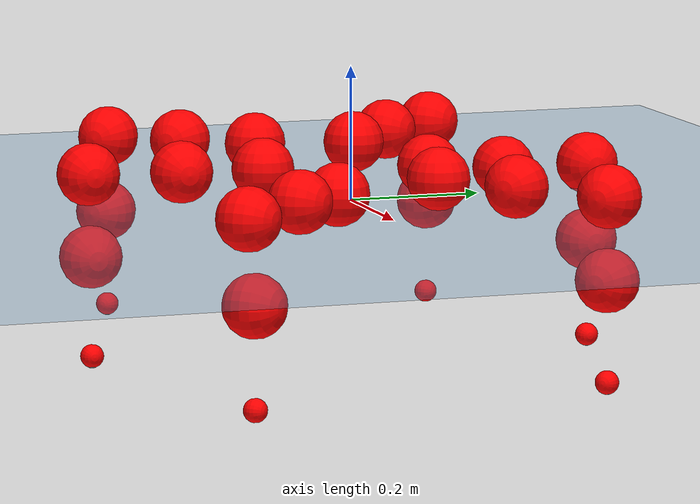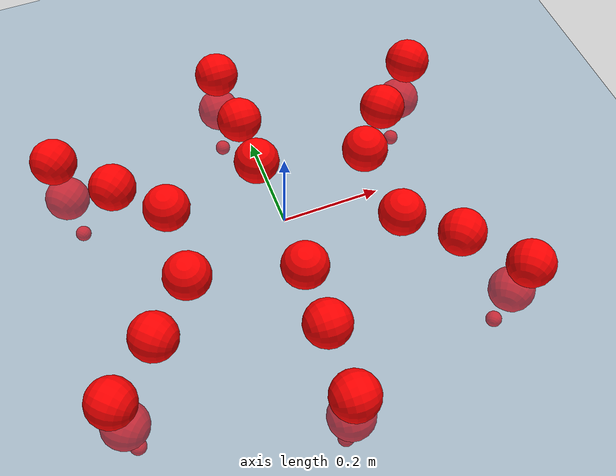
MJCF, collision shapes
<mujoco model="Golem">
  <compiler angle="radian" assetdir="assets" balanceinertia="true" inertiafromgeom="false"/>

  <option timestep="0.005" density="1.2" viscosity="2e-05"/>

  <size nkey="1"/>

  <visual>
    <quality shadowsize="8192"/>
    <map shadowclip="0.5"/>
  </visual>

  <default>
    <default class="/">
      <joint armature="0.01" damping="0.01" frictionloss="0.01"/>
      <geom contype="0" conaffinity="0" group="1" solref="-1000 -80"/>
      <site size="0.01 0.005 0.005" group="5"/>
      <general forcelimited="true" biastype="affine" gainprm="25" biasprm="0 -25 -0.5"/>
      <default class="visual">
        <geom type="mesh" group="2"/>
      </default>
      <default class="collision">
        <geom group="3"/>
      </default>
      <default class="foot">
        <geom size="0.01 0 0" condim="6" group="4" priority="1" solimp="0.015 1 0.01"/>
      </default>
      <default class="reward_collision_sphere">
        <geom group="5" rgba="1 0 0 1"/>
      </default>
    </default>
  </default>

  <asset>
    <texture type="skybox" colorspace="auto" name="//unnamed_texture_0" builtin="gradient" rgb1="0.95 0.95 0.95" rgb2="0.95 0.95 0.95" width="100" height="600"/>
    <texture type="2d" colorspace="auto" name="texplane" builtin="checker" rgb1="0.345 0.575 0.748" rgb2="0.345 0.575 0.748" markrgb="1 1 1" width="512" height="512"/>
    <material name="MatPlane" class="/" texture="texplane" texuniform="true" texrepeat="2 2" specular="0.9"/>
    <mesh name="body" class="/" file="body.stl" scale="0.001 0.001 0.001"/>
    <mesh name="coxa" class="/" file="coxa.stl" scale="0.001 0.001 0.001"/>
    <mesh name="femur" class="/" file="femur.stl" scale="0.001 0.001 0.001"/>
    <mesh name="tibia" class="/" file="tibia.stl" scale="0.001 0.001 0.001"/>
    <mesh name="tarsus" class="/" file="tarsus.stl" scale="0.001 0.001 0.001"/>
  </asset>

  <worldbody>
    <geom name="floor" class="/" size="100 100 0.125" type="plane" group="0" material="MatPlane"/>
    <light name="toplight_shadow" class="/" pos="0 0 5" dir="0.0990148 0.0990148 -0.990148" type="directional" ambient="0.04 0.04 0.04" diffuse="0.55 0.55 0.55" specular="0.12 0.12 0.12"/>
    <light name="toplight_fill" class="/" pos="0 0 5" dir="0.0990148 0.0990148 -0.990148" type="directional" castshadow="false" ambient="0.04 0.04 0.04" diffuse="0.3 0.3 0.3" specular="0.08 0.08 0.08"/>
    <body name="trunk" pos="-0.00754275 -0.00266074 -0.00204591" quat="1 -7.05986e-05 1.81909e-05 -0.000139772">
      <inertial pos="0.000947037 0.00152681 -0.00473125" quat="0.999966 0.00492569 0.00326401 0.00566777" mass="6.1063" diaginertia="0.0552422 0.0383001 0.00376622"/>
      <joint name="//unnamed_joint_0" type="free"/>
      <geom name="//unnamed_geom_1" class="/" pos="0 0 0.052568" quat="1 0 0 0" type="mesh" rgba="0.9 0.9 0.9 1" mesh="body"/>
      <site name="imu" class="/" pos="0.145601 -0.0311646 0.0852331" size="0.0116343"/>
      <camera name="track" class="/" pos="0 -2.58422 0" quat="0.707107 0.707107 0 0" mode="trackcom"/>
      <camera name="ego_camera" class="/" pos="0.178984 0 0.0821375" quat="-0.5 -0.5 0.5 0.5"/>
      <body name="coxa_RR" pos="-0.242782 -0.107803 0.0601779" quat="0.382748 0.000224239 -0.000220797 -0.923853">
        <inertial pos="-0.000610345 0.00823187 0.00109018" quat="0.9998 0.00334843 -0.00863545 0.0177184" mass="0.354193" diaginertia="0.0528659 0.0385921 0.0040333"/>
        <joint name="coxa_joint_RR" class="/" pos="0 0 0" axis="0.00496946 0.00207577 -0.999985" stiffness="0.0346108" range="-3.12858 3.1367" armature="0.0146374" damping="0.00754293" frictionloss="0.0117551"/>
        <geom name="//unnamed_geom_2" class="/" type="mesh" rgba="0.2 0.2 0.2 1" mesh="coxa"/>
        <geom name="//unnamed_geom_3" class="reward_collision_sphere" size="0.0465372" pos="-0.041304 0 0"/>
        <body name="femur_RR" pos="0.0886178 0.00201905 -0.00293168" quat="0.499994 -0.500005 0.500004 0.499997">
          <inertial pos="0.00142349 0.000323192 -0.00132669" quat="0.999997 -0.000814033 -0.00099316 -0.00212063" mass="0.315962" diaginertia="0.0497211 0.0365767 0.00333834"/>
          <joint name="femur_joint_RR" class="/" pos="0 0 0" axis="0.000690244 0.00497518 -0.999987" stiffness="0.032959" range="-3.01717 3.21525" armature="0.0110531" damping="0" frictionloss="0.00841244"/>
          <geom name="//unnamed_geom_4" class="/" type="mesh" rgba="0.9 0.9 0.9 1" mesh="femur"/>
          <geom name="//unnamed_geom_5" class="reward_collision_sphere" size="0.0465372"/>
          <body name="tibia_RR" pos="0.0047877 -0.13245 -0.00835341" quat="0.00273565 0.999992 0.001107 -0.00273155">
            <inertial pos="0.00616741 -0.00159196 -0.00179049" quat="0.99997 0.00367325 -0.000144643 0.00680736" mass="0.305998" diaginertia="0.0497955 0.0368563 0.00401433"/>
            <joint name="tibia_joint_RR" class="/" pos="0 0 0" axis="0.0221481 0.0202443 0.99955" range="-3.16011 3.08041" armature="0.0105782" damping="0.0123302" frictionloss="0.0115508"/>
            <geom name="//unnamed_geom_6" class="/" type="mesh" rgba="0.2 0.2 0.2 1" mesh="tibia"/>
            <geom name="//unnamed_geom_7" class="reward_collision_sphere" size="0.0465372"/>
            <body name="tarsus_RR" pos="0.116173 0.00231943 -0.00575792" quat="1 -5.37224e-05 0.000129917 -0.000183525">
              <inertial pos="0.0767953 4.82066e-06 -0.00122571" quat="0.49887 0.500409 0.496698 0.503994" mass="0.311426" diaginertia="0.0507564 0.0359821 0.00369067"/>
              <joint name="tarsus_joint_RR" class="/" pos="0 0 0" axis="0.00397291 0.00470634 0.999981" range="-3.01852 3.07378" armature="0.0111405" damping="0.0399378" frictionloss="0.0124703"/>
              <geom name="//unnamed_geom_8" class="/" type="mesh" rgba="0.9 0.9 0.9 1" mesh="tarsus"/>
              <geom name="foot_1" class="foot" size="0.0117111" pos="0.154202 0 0" quat="0 -0.707107 0 0.707107"/>
              <geom name="//unnamed_geom_10" class="reward_collision_sphere" size="0.0465372"/>
              <geom name="//unnamed_geom_11" class="reward_collision_sphere" size="0.0174514" pos="0.148006 0 0"/>
              <site name="foot_1" class="foot" pos="0.154202 0 0" quat="0 -0.707107 0 0.707107" size="0.0116343"/>
            </body>
          </body>
        </body>
      </body>
      <body name="coxa_RM" pos="-0.00171194 -0.172459 0.0534407" quat="0.707999 -0.000867109 0.000126292 -0.706213">
        <inertial pos="-0.00421066 -0.000456093 0.00127214" quat="0.999984 -0.000137667 -0.00432408 0.00377246" mass="0.321112" diaginertia="0.0510588 0.0398871 0.00359992"/>
        <joint name="coxa_joint_RM" class="/" pos="0 0 0" axis="0.0051509 0.00293705 -0.999982" range="-3.13441 3.16837" armature="0.0113015" damping="0.0305759" frictionloss="0.0170301"/>
        <geom name="//unnamed_geom_12" class="/" type="mesh" rgba="0.2 0.2 0.2 1" mesh="coxa"/>
        <geom name="//unnamed_geom_13" class="reward_collision_sphere" size="0.0465372" pos="-0.041304 0 0"/>
        <body name="femur_RM" pos="0.0820906 -0.00563791 0.000484569" quat="0.500617 -0.498044 0.498707 0.502619">
          <inertial pos="0.00124209 0.000593845 -0.00010218" quat="1 2.28463e-05 4.2408e-05 -2.50244e-05" mass="0.275946" diaginertia="0.044552 0.0344239 0.00337675"/>
          <joint name="femur_joint_RM" class="/" pos="0 0 0" axis="0.00744629 0.011378 -0.999908" range="-3.09661 3.14908" armature="0.0124168" damping="0" frictionloss="0.0116918"/>
          <geom name="//unnamed_geom_14" class="/" type="mesh" rgba="0.9 0.9 0.9 1" mesh="femur"/>
          <geom name="//unnamed_geom_15" class="reward_collision_sphere" size="0.0465372"/>
          <body name="tibia_RM" pos="-0.00239552 -0.139658 -0.00806099" quat="0.000228868 1 0.000544801 0.00058303">
            <inertial pos="-0.0036045 0.00796723 0.00184331" quat="0.999486 0.0203491 -0.00129947 0.0247507" mass="0.339775" diaginertia="0.0488858 0.0323115 0.003657"/>
            <joint name="tibia_joint_RM" class="/" pos="0 0 0" axis="0.00205897 -0.00292907 0.999994" range="-3.01077 2.95493" armature="0.0117039" damping="0.0179792" frictionloss="0.0123872"/>
            <geom name="//unnamed_geom_16" class="/" type="mesh" rgba="0.2 0.2 0.2 1" mesh="tibia"/>
            <geom name="//unnamed_geom_17" class="reward_collision_sphere" size="0.0465372"/>
            <body name="tarsus_RM" pos="0.121968 -0.00120163 -0.00328604" quat="1 -1.25821e-05 -5.65164e-05 0.000112066">
              <inertial pos="0.0845171 0.00353346 -0.0045015" quat="0.488762 0.497365 0.480223 0.532095" mass="0.286503" diaginertia="0.0537187 0.037532 0.00399917"/>
              <joint name="tarsus_joint_RM" class="/" pos="0 0 0" axis="-0.000750321 -0.0064749 0.999979" stiffness="0.0167369" range="-3.20216 3.12181" armature="0.011238" damping="0" frictionloss="0.0112427"/>
              <geom name="//unnamed_geom_18" class="/" type="mesh" rgba="0.9 0.9 0.9 1" mesh="tarsus"/>
              <geom name="foot_2" class="foot" size="0.0120336" pos="0.154202 0 0" quat="0 -0.707107 0 0.707107"/>
              <geom name="//unnamed_geom_20" class="reward_collision_sphere" size="0.0465372"/>
              <geom name="//unnamed_geom_21" class="reward_collision_sphere" size="0.0174514" pos="0.148006 0 0"/>
              <site name="foot_2" class="foot" pos="0.154202 0 0" quat="0 -0.707107 0 0.707107" size="0.0116343"/>
            </body>
          </body>
        </body>
      </body>
      <body name="coxa_RF" pos="0.24734 -0.115151 0.0465316" quat="0.923465 -0.00126226 0.000305035 -0.383681">
        <inertial pos="-0.000329764 -0.00214611 0.00183428" quat="0.999994 0.000934685 0.00300066 0.00107596" mass="0.323366" diaginertia="0.0493668 0.0368062 0.00386148"/>
        <joint name="coxa_joint_RF" class="/" pos="0 0 0" axis="-0.00134481 -7.48647e-05 -0.999999" stiffness="0.0113072" range="-3.10293 3.16072" armature="0.00832296" damping="0.0291183" frictionloss="0.0128468"/>
        <geom name="//unnamed_geom_22" class="/" type="mesh" rgba="0.2 0.2 0.2 1" mesh="coxa"/>
        <geom name="//unnamed_geom_23" class="reward_collision_sphere" size="0.0465372" pos="-0.041304 0 0"/>
        <body name="femur_RF" pos="0.0794833 0.00167848 0.00667433" quat="0.500022 -0.499997 0.499984 0.499996">
          <inertial pos="-0.000634124 0.00322298 0.0020967" quat="0.999991 -0.000608025 0.00324275 0.00262095" mass="0.317552" diaginertia="0.0494601 0.0379427 0.00347374"/>
          <joint name="femur_joint_RF" class="/" pos="0 0 0" axis="-0.00236122 0.000953665 -0.999997" range="-2.98218 3.14719" armature="0.0153285" damping="0.0045423" frictionloss="0.00883196"/>
          <geom name="//unnamed_geom_24" class="/" type="mesh" rgba="0.9 0.9 0.9 1" mesh="femur"/>
          <geom name="//unnamed_geom_25" class="reward_collision_sphere" size="0.0465372"/>
          <body name="tibia_RF" pos="0.00478099 -0.137538 -0.00865232" quat="-0.000865519 1 -7.81154e-05 0.000391956">
            <inertial pos="0.00832174 -0.00165593 -0.00163733" quat="0.999999 0.000393633 0.000711859 -0.000736951" mass="0.292965" diaginertia="0.0520507 0.0352756 0.00390361"/>
            <joint name="tibia_joint_RF" class="/" pos="0 0 0" axis="0.0282697 -0.0278887 0.999211" range="-3.16002 3.2987" armature="0.0117262" damping="0.0175773" frictionloss="0.0115822"/>
            <geom name="//unnamed_geom_26" class="/" type="mesh" rgba="0.2 0.2 0.2 1" mesh="tibia"/>
            <geom name="//unnamed_geom_27" class="reward_collision_sphere" size="0.0465372"/>
            <body name="tarsus_RF" pos="0.123266 -0.00709601 -0.00570212" quat="0.999993 0.00249364 0.00176144 -0.00196667">
              <inertial pos="0.0821195 0.00161737 0.000888833" quat="0.495535 0.497909 0.498986 0.507489" mass="0.303888" diaginertia="0.0501206 0.0350117 0.00359018"/>
              <joint name="tarsus_joint_RF" class="/" pos="0 0 0" axis="-0.0135505 0.00497472 0.999896" stiffness="0.00469025" range="-3.13098 3.1173" armature="0.0101036" damping="0.00036395" frictionloss="0.0126338"/>
              <geom name="//unnamed_geom_28" class="/" type="mesh" rgba="0.9 0.9 0.9 1" mesh="tarsus"/>
              <geom name="foot_3" class="foot" size="0.00965845" pos="0.154202 0 0" quat="0 -0.707107 0 0.707107"/>
              <geom name="//unnamed_geom_30" class="reward_collision_sphere" size="0.0465372"/>
              <geom name="//unnamed_geom_31" class="reward_collision_sphere" size="0.0174514" pos="0.148006 0 0"/>
              <site name="foot_3" class="foot" pos="0.154202 0 0" quat="0 -0.707107 0 0.707107" size="0.0116343"/>
            </body>
          </body>
        </body>
      </body>
      <body name="coxa_LR" pos="-0.237052 0.107244 0.0561769" quat="0.382285 2.24665e-05 -0.000801899 0.924044">
        <inertial pos="0.00705051 -0.0017441 0.00888209" quat="0.999198 -0.0181525 0.0187224 0.0303936" mass="0.312234" diaginertia="0.0478295 0.030252 0.00355854"/>
        <joint name="coxa_joint_LR" class="/" pos="0 0 0" axis="0.0346621 0.0107977 -0.999341" range="-3.15452 3.17837" armature="0.0131407" damping="0" frictionloss="0.0146169"/>
        <geom name="//unnamed_geom_32" class="/" type="mesh" rgba="0.2 0.2 0.2 1" mesh="coxa"/>
        <geom name="//unnamed_geom_33" class="reward_collision_sphere" size="0.0465372" pos="-0.041304 0 0"/>
        <body name="femur_LR" pos="0.0771513 0.00347883 0.00348385" quat="0.500018 -0.500117 0.499848 0.500017">
          <inertial pos="0.00031205 0.00207774 -0.00197086" quat="0.999938 0.00980994 0.00328325 0.00410659" mass="0.315428" diaginertia="0.0507348 0.0342408 0.00370232"/>
          <joint name="femur_joint_LR" class="/" pos="0 0 0" axis="0.0134623 -0.00224863 0.999907" range="-3.12709 3.09747" armature="0.012507" damping="0.0185658" frictionloss="0.0165673"/>
          <geom name="//unnamed_geom_34" class="/" type="mesh" rgba="0.9 0.9 0.9 1" mesh="femur"/>
          <geom name="//unnamed_geom_35" class="reward_collision_sphere" size="0.0465372"/>
          <body name="tibia_LR" pos="0.00431435 -0.141542 -0.00610354" quat="0.00180877 0.999994 0.00116312 -0.00264334">
            <inertial pos="0.00160799 0.00207208 0.000299584" quat="0.999955 -0.00749673 -0.00326905 0.00470438" mass="0.309564" diaginertia="0.0496553 0.0349716 0.00356518"/>
            <joint name="tibia_joint_LR" class="/" pos="0 0 0" axis="-0.0120665 0.00119734 -0.999926" stiffness="0.00491899" range="-3.10242 3.24015" armature="0.010505" damping="0" frictionloss="0.0128678"/>
            <geom name="//unnamed_geom_36" class="/" type="mesh" rgba="0.2 0.2 0.2 1" mesh="tibia"/>
            <geom name="//unnamed_geom_37" class="reward_collision_sphere" size="0.0465372"/>
            <body name="tarsus_LR" pos="0.127222 0.000434395 -0.00491268" quat="0.999993 -0.000513469 0.00267402 -0.00244233">
              <inertial pos="0.0741124 0.000194605 0.00821217" quat="0.499623 0.500822 0.500346 0.499208" mass="0.328917" diaginertia="0.0497775 0.0380758 0.00365469"/>
              <joint name="tarsus_joint_LR" class="/" pos="0 0 0" axis="0.0167395 -0.0274383 -0.999483" range="-3.02648 3.25229" armature="0.0129156" damping="0.0123951" frictionloss="0.0116348"/>
              <geom name="//unnamed_geom_38" class="/" type="mesh" rgba="0.9 0.9 0.9 1" mesh="tarsus"/>
              <geom name="foot_4" class="foot" size="0.0105273" pos="0.154202 0 0" quat="0.707107 0 -0.707107 0"/>
              <geom name="//unnamed_geom_40" class="reward_collision_sphere" size="0.0465372"/>
              <geom name="//unnamed_geom_41" class="reward_collision_sphere" size="0.0174514" pos="0.148006 0 0"/>
              <site name="foot_4" class="foot" pos="0.154202 0 0" quat="0.707107 0 -0.707107 0" size="0.0116343"/>
            </body>
          </body>
        </body>
      </body>
      <body name="coxa_LM" pos="-0.00492659 0.170167 0.0469642" quat="0.707372 0.000133859 0.000408902 0.706841">
        <inertial pos="0.00117494 -4.7036e-05 0.00410816" quat="0.999867 -0.00611812 0.0145793 -0.00395663" mass="0.315249" diaginertia="0.0508229 0.0369877 0.0037738"/>
        <joint name="coxa_joint_LM" class="/" pos="0 0 0" axis="0.00378489 -0.00907444 -0.999952" stiffness="0.01537" range="-3.25072 3.18227" armature="0.0110082" damping="0" frictionloss="0.00869391"/>
        <geom name="//unnamed_geom_42" class="/" type="mesh" rgba="0.2 0.2 0.2 1" mesh="coxa"/>
        <geom name="//unnamed_geom_43" class="reward_collision_sphere" size="0.0465372" pos="-0.041304 0 0"/>
        <body name="femur_LM" pos="0.0773471 -0.00295385 -0.00788971" quat="0.501399 -0.499732 0.498559 0.500306">
          <inertial pos="-0.00142259 0.00564359 -0.00868425" quat="0.999303 0.0239729 -0.00245088 0.0284978" mass="0.318275" diaginertia="0.0488291 0.0405844 0.00376625"/>
          <joint name="femur_joint_LM" class="/" pos="0 0 0" axis="-0.00891148 0.0128275 0.999878" range="-3.1527 3.2429" armature="0.0103125" damping="0.021746" frictionloss="0.0115921"/>
          <geom name="//unnamed_geom_44" class="/" type="mesh" rgba="0.9 0.9 0.9 1" mesh="femur"/>
          <geom name="//unnamed_geom_45" class="reward_collision_sphere" size="0.0465372"/>
          <body name="tibia_LM" pos="0.00163735 -0.137448 0.00604978" quat="-0.0023077 0.999991 -0.00305762 -0.00206197">
            <inertial pos="0.000907445 0.0090223 0.000325448" quat="0.999854 0.0159617 -0.00373399 -0.00478369" mass="0.316472" diaginertia="0.0497205 0.0331912 0.00375877"/>
            <joint name="tibia_joint_LM" class="/" pos="0 0 0" axis="-0.0118525 -0.00579809 -0.999913" stiffness="0.00294036" range="-3.12946 3.14672" armature="0.00810972" damping="0.0475689" frictionloss="0.0128027"/>
            <geom name="//unnamed_geom_46" class="/" type="mesh" rgba="0.2 0.2 0.2 1" mesh="tibia"/>
            <geom name="//unnamed_geom_47" class="reward_collision_sphere" size="0.0465372"/>
            <body name="tarsus_LM" pos="0.117657 -5.79057e-06 -0.00306559" quat="0.999989 -0.00295015 -1.78685e-05 0.00355327">
              <inertial pos="0.0863868 -0.00129702 0.00205054" quat="0.500004 0.499977 0.500044 0.499975" mass="0.332801" diaginertia="0.0551057 0.0391692 0.00391306"/>
              <joint name="tarsus_joint_LM" class="/" pos="0 0 0" axis="-0.00380072 -0.00326958 -0.999987" stiffness="0.0231446" range="-3.31155 3.15954" armature="0.00777952" damping="0.0521568" frictionloss="0.0113138"/>
              <geom name="//unnamed_geom_48" class="/" type="mesh" rgba="0.9 0.9 0.9 1" mesh="tarsus"/>
              <geom name="foot_5" class="foot" size="0.011587" pos="0.154202 0 0" quat="0.707107 0 -0.707107 0"/>
              <geom name="//unnamed_geom_50" class="reward_collision_sphere" size="0.0465372"/>
              <geom name="//unnamed_geom_51" class="reward_collision_sphere" size="0.0174514" pos="0.148006 0 0"/>
              <site name="foot_5" class="foot" pos="0.154202 0 0" quat="0.707107 0 -0.707107 0" size="0.0116343"/>
            </body>
          </body>
        </body>
      </body>
      <body name="coxa_LF" pos="0.236333 0.099947 0.0602864" quat="0.923499 -0.000218108 -0.000490258 0.3836">
        <inertial pos="-0.00110362 0.00185173 0.000527964" quat="0.999819 -0.0145006 0.0109835 0.00550331" mass="0.356446" diaginertia="0.0556997 0.0398731 0.00400117"/>
        <joint name="coxa_joint_LF" class="/" pos="0 0 0" axis="-0.0016008 -0.0020279 -0.999997" stiffness="0.0270697" range="-3.11917 2.96846" armature="0.00819619" damping="0.0532892" frictionloss="0.0137095"/>
        <geom name="//unnamed_geom_52" class="/" type="mesh" rgba="0.2 0.2 0.2 1" mesh="coxa"/>
        <geom name="//unnamed_geom_53" class="reward_collision_sphere" size="0.0465372" pos="-0.041304 0 0"/>
        <body name="femur_LF" pos="0.079308 0.00748908 -0.0039476" quat="0.501985 -0.499806 0.500923 0.497274">
          <inertial pos="-0.00829539 -0.000942571 0.00192681" quat="0.999989 0.00456033 0.000775438 -0.000363274" mass="0.305348" diaginertia="0.0486041 0.0352524 0.00385292"/>
          <joint name="femur_joint_LF" class="/" pos="0 0 0" axis="0.00388204 -0.00413972 0.999984" range="-3.20032 3.17214" armature="0.00820608" damping="0" frictionloss="0.0110058"/>
          <geom name="//unnamed_geom_54" class="/" type="mesh" rgba="0.9 0.9 0.9 1" mesh="femur"/>
          <geom name="//unnamed_geom_55" class="reward_collision_sphere" size="0.0465372"/>
          <body name="tibia_LF" pos="0.00398449 -0.146536 -0.00304176" quat="0.000446194 0.999999 0.000457168 -0.000842468">
            <inertial pos="-0.000212683 -0.00437356 -0.000928519" quat="0.999993 0.00164374 -0.00312429 0.00127213" mass="0.322792" diaginertia="0.049475 0.0372927 0.0037439"/>
            <joint name="tibia_joint_LF" class="/" pos="0 0 0" axis="-0.00498552 0.00260544 -0.999984" stiffness="0.0157639" range="-3.13147 3.1803" armature="0.0135143" damping="0.0263111" frictionloss="0.010634"/>
            <geom name="//unnamed_geom_56" class="/" type="mesh" rgba="0.2 0.2 0.2 1" mesh="tibia"/>
            <geom name="//unnamed_geom_57" class="reward_collision_sphere" size="0.0465372"/>
            <body name="tarsus_LF" pos="0.122426 -0.00394698 -0.00423606" quat="0.999993 -0.000194065 -0.000557659 0.00372497">
              <inertial pos="0.0835495 0.00296192 0.00152355" quat="0.485054 0.507928 0.49532 0.511263" mass="0.30982" diaginertia="0.0512691 0.0340468 0.00369717"/>
              <joint name="tarsus_joint_LF" class="/" pos="0 0 0" axis="0.0074755 0.00137127 -0.999971" range="-3.04442 3.10914" armature="0.0117064" damping="0.0502445" frictionloss="0.0104064"/>
              <geom name="//unnamed_geom_58" class="/" type="mesh" rgba="0.9 0.9 0.9 1" mesh="tarsus"/>
              <geom name="foot_6" class="foot" size="0.0115086" pos="0.154202 0 0" quat="0.707107 0 -0.707107 0"/>
              <geom name="//unnamed_geom_60" class="reward_collision_sphere" size="0.0465372"/>
              <geom name="//unnamed_geom_61" class="reward_collision_sphere" size="0.0174514" pos="0.148006 0 0"/>
              <site name="foot_6" class="foot" pos="0.154202 0 0" quat="0.707107 0 -0.707107 0" size="0.0116343"/>
            </body>
          </body>
        </body>
      </body>
    </body>
  </worldbody>

  <contact>
    <pair class="/" geom1="floor" geom2="foot_1" name="//unnamed_contact_0"/>
    <pair class="/" geom1="floor" geom2="foot_2" name="//unnamed_contact_1"/>
    <pair class="/" geom1="floor" geom2="foot_3" name="//unnamed_contact_2"/>
    <pair class="/" geom1="floor" geom2="foot_4" name="//unnamed_contact_3"/>
    <pair class="/" geom1="floor" geom2="foot_5" name="//unnamed_contact_4"/>
    <pair class="/" geom1="floor" geom2="foot_6" name="//unnamed_contact_5"/>
  </contact>

  <actuator>
    <general name="coxa_joint_RR" class="/" joint="coxa_joint_RR" forcerange="-9.1931 9.1931" gainprm="27.8591" biasprm="0 -27.8591 -0.542046"/>
    <general name="femur_joint_RR" class="/" joint="femur_joint_RR" forcerange="-8.72305 8.72305" gainprm="27.8591" biasprm="0 -27.8591 -0.542046"/>
    <general name="tibia_joint_RR" class="/" joint="tibia_joint_RR" forcerange="-8.60347 8.60347" gainprm="27.8591" biasprm="0 -27.8591 -0.542046"/>
    <general name="tarsus_joint_RR" class="/" joint="tarsus_joint_RR" forcerange="-7.02538 7.02538" gainprm="27.8591" biasprm="0 -27.8591 -0.542046"/>
    <general name="coxa_joint_RM" class="/" joint="coxa_joint_RM" forcerange="-11.0416 11.0416" gainprm="27.8591" biasprm="0 -27.8591 -0.542046"/>
    <general name="femur_joint_RM" class="/" joint="femur_joint_RM" forcerange="-7.992 7.992" gainprm="27.8591" biasprm="0 -27.8591 -0.542046"/>
    <general name="tibia_joint_RM" class="/" joint="tibia_joint_RM" forcerange="-9.43248 9.43248" gainprm="27.8591" biasprm="0 -27.8591 -0.542046"/>
    <general name="tarsus_joint_RM" class="/" joint="tarsus_joint_RM" forcerange="-9.18449 9.18449" gainprm="27.8591" biasprm="0 -27.8591 -0.542046"/>
    <general name="coxa_joint_RF" class="/" joint="coxa_joint_RF" forcerange="-10.7829 10.7829" gainprm="27.8591" biasprm="0 -27.8591 -0.542046"/>
    <general name="femur_joint_RF" class="/" joint="femur_joint_RF" forcerange="-9.19337 9.19337" gainprm="27.8591" biasprm="0 -27.8591 -0.542046"/>
    <general name="tibia_joint_RF" class="/" joint="tibia_joint_RF" forcerange="-11.2104 11.2104" gainprm="27.8591" biasprm="0 -27.8591 -0.542046"/>
    <general name="tarsus_joint_RF" class="/" joint="tarsus_joint_RF" forcerange="-7.90526 7.90526" gainprm="27.8591" biasprm="0 -27.8591 -0.542046"/>
    <general name="coxa_joint_LR" class="/" joint="coxa_joint_LR" forcerange="-8.55313 8.55313" gainprm="27.8591" biasprm="0 -27.8591 -0.542046"/>
    <general name="femur_joint_LR" class="/" joint="femur_joint_LR" forcerange="-9.08592 9.08592" gainprm="27.8591" biasprm="0 -27.8591 -0.542046"/>
    <general name="tibia_joint_LR" class="/" joint="tibia_joint_LR" forcerange="-7.89863 7.89863" gainprm="27.8591" biasprm="0 -27.8591 -0.542046"/>
    <general name="tarsus_joint_LR" class="/" joint="tarsus_joint_LR" forcerange="-8.47648 8.47648" gainprm="27.8591" biasprm="0 -27.8591 -0.542046"/>
    <general name="coxa_joint_LM" class="/" joint="coxa_joint_LM" forcerange="-6.75847 6.75847" gainprm="27.8591" biasprm="0 -27.8591 -0.542046"/>
    <general name="femur_joint_LM" class="/" joint="femur_joint_LM" forcerange="-8.54316 8.54316" gainprm="27.8591" biasprm="0 -27.8591 -0.542046"/>
    <general name="tibia_joint_LM" class="/" joint="tibia_joint_LM" forcerange="-7.81388 7.81388" gainprm="27.8591" biasprm="0 -27.8591 -0.542046"/>
    <general name="tarsus_joint_LM" class="/" joint="tarsus_joint_LM" forcerange="-9.10326 9.10326" gainprm="27.8591" biasprm="0 -27.8591 -0.542046"/>
    <general name="coxa_joint_LF" class="/" joint="coxa_joint_LF" forcerange="-11.3095 11.3095" gainprm="27.8591" biasprm="0 -27.8591 -0.542046"/>
    <general name="femur_joint_LF" class="/" joint="femur_joint_LF" forcerange="-8.90001 8.90001" gainprm="27.8591" biasprm="0 -27.8591 -0.542046"/>
    <general name="tibia_joint_LF" class="/" joint="tibia_joint_LF" forcerange="-8.93122 8.93122" gainprm="27.8591" biasprm="0 -27.8591 -0.542046"/>
    <general name="tarsus_joint_LF" class="/" joint="tarsus_joint_LF" forcerange="-9.21078 9.21078" gainprm="27.8591" biasprm="0 -27.8591 -0.542046"/>
  </actuator>

  <sensor>
    <gyro site="imu" name="imu_angular_velocity"/>
    <velocimeter site="imu" name="imu_linear_velocity"/>
    <framelinvel objtype="site" objname="foot_1" name="foot_1_global_linear_velocity"/>
    <framelinvel objtype="site" objname="foot_2" name="foot_2_global_linear_velocity"/>
    <framelinvel objtype="site" objname="foot_3" name="foot_3_global_linear_velocity"/>
    <framelinvel objtype="site" objname="foot_4" name="foot_4_global_linear_velocity"/>
    <framelinvel objtype="site" objname="foot_5" name="foot_5_global_linear_velocity"/>
    <framelinvel objtype="site" objname="foot_6" name="foot_6_global_linear_velocity"/>
  </sensor>

  <keyframe>
    <key name="home" qpos="0 0 0.1457 1 0 0 0 0 0 0 0 0 0 0 0 0 0 0 0 0 0 0 0 0 0 0 0 0 0 0 0"/>
  </keyframe>
</mujoco>
